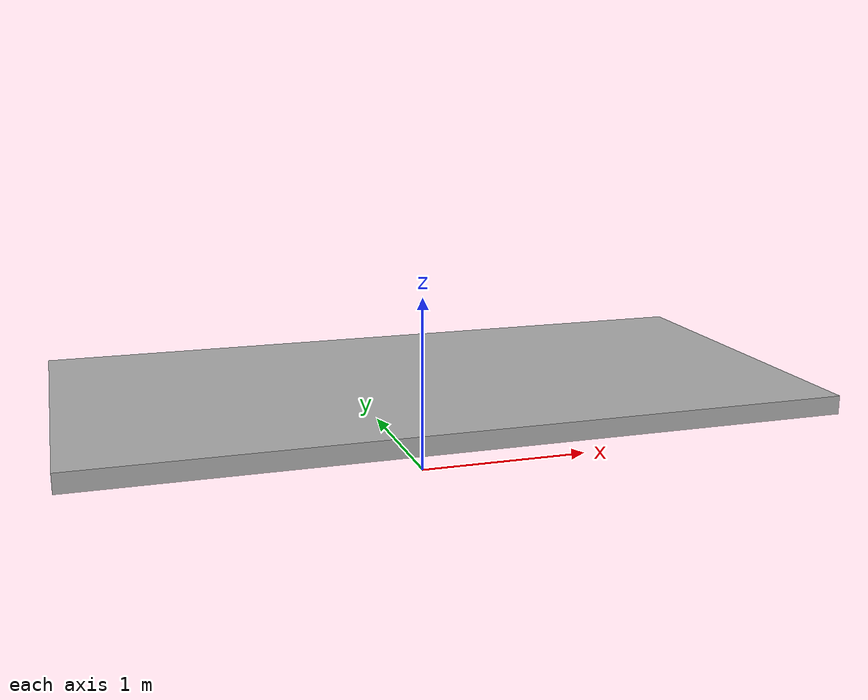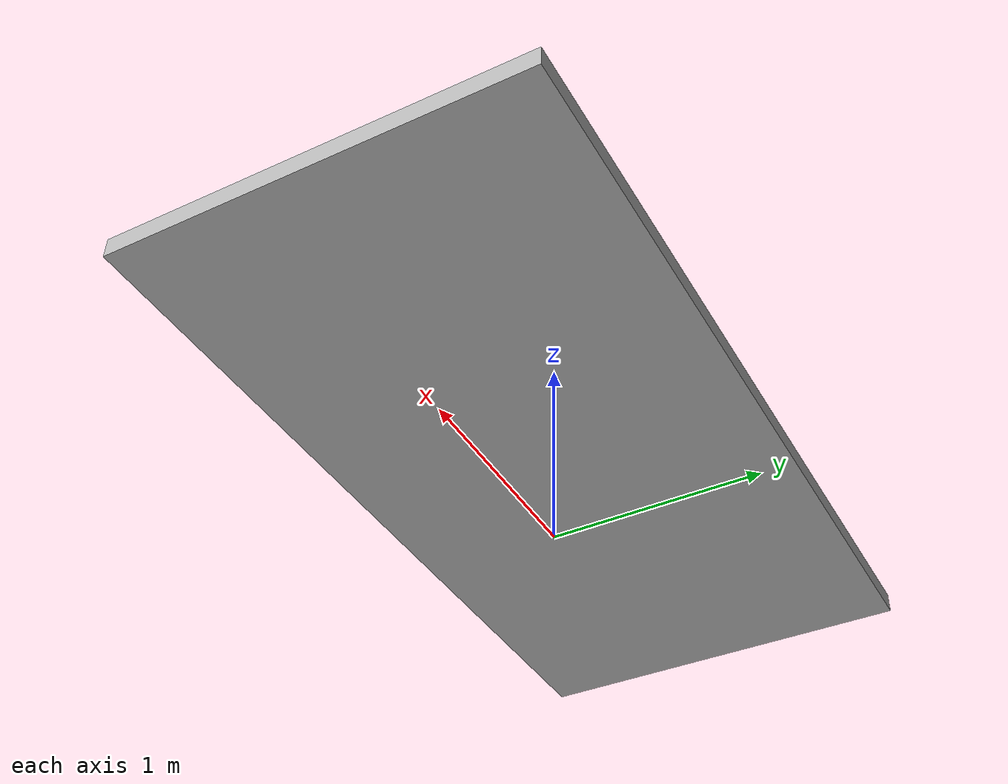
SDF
<?xml version="1.0"?>
<sdf version="1.3">
  <model name="platform_3">
    <pose>0 0 .5 0 0 0</pose>
    <static>true</static>
    <link name="link">
      <collision name="collision">
        <geometry>
          <box>
            <size>4 2 .1</size>
          </box>
        </geometry>
      </collision>

      <visual name="visual">
        <geometry>
          <mesh>
            <uri>model://platform_3/meshes/platform_3.dae</uri>
          </mesh>
        </geometry>
      </visual>
    </link>
  </model>
</sdf>
